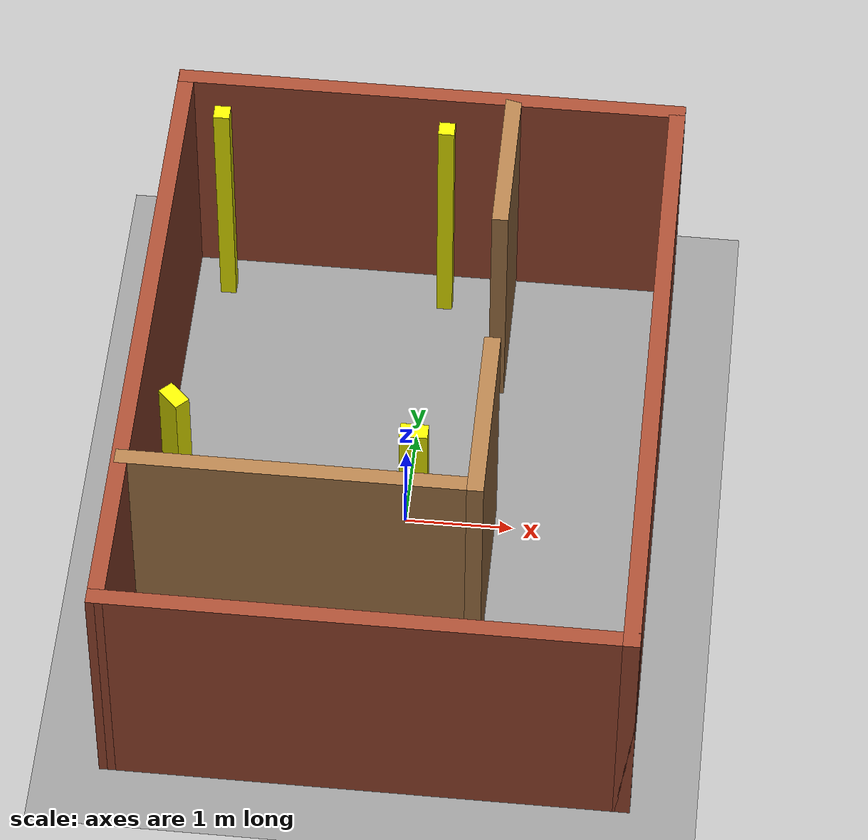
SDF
<sdf version="1.6">
 <world name="default">
  <light name="sun" type="directional">
   <pose>0 0 10 0 -0 0</pose>
   <diffuse>0.8 0.8 0.8 1</diffuse>
   <specular>0.2 0.2 0.2 1</specular>
   <attenuation>
    <range>1000</range>
    <constant>0.9</constant>
    <linear>0.01</linear>
    <quadratic>0.001</quadratic>
   </attenuation>
   <direction>0.5 0.1 -0.9</direction>
  </light>
  <scene><ambient>0.4 0.4 0.4 1</ambient><background>0.7 0.7 0.7 1</background><shadows>1</shadows></scene>
  <physics name="default_physics" default="0" type="ode">
   <max_step_size>0.01</max_step_size>
   <real_time_factor>1</real_time_factor>
   <real_time_update_rate>100</real_time_update_rate>
  </physics>
  <model name="ground_plane_0">
   <static>1</static>
   <link name="link">
    <collision name="collision">
     <geometry><plane><normal>0 0 1</normal><size>100 100</size></plane></geometry>
     <surface><friction><ode><mu>100</mu><mu2>50</mu2></ode></friction></surface>
    </collision>
    <visual name="visual">
     <cast_shadows>0</cast_shadows>
     <geometry><plane><normal>0 0 1</normal><size>100 100</size></plane></geometry>
     <material>
      <script><uri>file://media/materials/scripts/gazebo.material</uri><name>Gazebo/Grey</name></script>
     </material>
    </visual>
    <velocity_decay><linear>0</linear><angular>0</angular></velocity_decay>
   </link>
   <pose>0.497681 0 0 0 -0 0</pose>
  </model>
  <gravity>0 0 -9.8</gravity>
  <magnetic_field>6e-06 2.3e-05 -4.2e-05</magnetic_field>
  <atmosphere type="adiabatic"/>
  <spherical_coordinates>
   <surface_model>EARTH_WGS84</surface_model>
   <latitude_deg>0</latitude_deg>
   <longitude_deg>0</longitude_deg>
   <elevation>0</elevation>
   <heading_deg>0</heading_deg>
  </spherical_coordinates>
  <model name="world_map">
   <pose>-0.075978 0.05119 0 0 -0 0</pose>
   <link name="Wall_14">
    <collision name="Wall_14_Collision">
     <geometry><box><size>3.25 0.15 2.5</size></box></geometry>
     <pose>0 0 1.25 0 -0 0</pose>
    </collision>
    <visual name="Wall_14_Visual">
     <pose>0 0 1.25 0 -0 0</pose>
     <geometry><box><size>3.25 0.15 2.5</size></box></geometry>
     <material>
      <script><uri>file://media/materials/scripts/gazebo.material</uri><name>Gazebo/Wood</name></script>
      <ambient>1 1 1 1</ambient>
     </material>
    </visual>
    <pose>-0.721278 -1.51317 0 0 -0 0</pose>
   </link>
   <link name="Wall_15">
    <collision name="Wall_15_Collision">
     <geometry><box><size>1.75 0.15 2.5</size></box></geometry>
     <pose>0 0 1.25 0 -0 0</pose>
    </collision>
    <visual name="Wall_15_Visual">
     <pose>0 0 1.25 0 -0 0</pose>
     <geometry><box><size>1.75 0.15 2.5</size></box></geometry>
     <material>
      <script><uri>file://media/materials/scripts/gazebo.material</uri><name>Gazebo/Wood</name></script>
      <ambient>1 1 1 1</ambient>
     </material>
    </visual>
    <pose>0.828722 -0.713174 0 0 -0 1.5708</pose>
   </link>
   <link name="Wall_17">
    <collision name="Wall_17_Collision">
     <geometry><box><size>1.5 0.15 2.5</size></box></geometry>
     <pose>0 0 1.25 0 -0 0</pose>
    </collision>
    <visual name="Wall_17_Visual">
     <pose>0 0 1.25 0 -0 0</pose>
     <geometry><box><size>1.5 0.15 2.5</size></box></geometry>
     <material>
      <script><uri>file://media/materials/scripts/gazebo.material</uri><name>Gazebo/Wood</name></script>
      <ambient>1 1 1 1</ambient>
     </material>
    </visual>
    <pose>0.773812 2.30803 0 0 0 -1.5708</pose>
   </link>
   <link name="Wall_2">
    <collision name="Wall_2_Collision">
     <geometry><box><size>4.76143 0.15 2.5</size></box></geometry>
     <pose>0 0 1.25 0 -0 0</pose>
    </collision>
    <visual name="Wall_2_Visual">
     <pose>0 0 1.25 0 -0 0</pose>
     <geometry><box><size>4.76143 0.15 2.5</size></box></geometry>
     <material>
      <script><uri>file://media/materials/scripts/gazebo.material</uri><name>Gazebo/Bricks</name></script>
      <ambient>1 1 1 1</ambient>
     </material>
    </visual>
    <pose>3.5e-05 -3.05 0 0 -0 0</pose>
   </link>
   <link name="Wall_4">
    <collision name="Wall_4_Collision">
     <geometry><box><size>6.25 0.15 2.5</size></box></geometry>
     <pose>0 0 1.25 0 -0 0</pose>
    </collision>
    <visual name="Wall_4_Visual">
     <pose>0 0 1.25 0 -0 0</pose>
     <geometry><box><size>6.25 0.15 2.5</size></box></geometry>
     <material>
      <script><uri>file://media/materials/scripts/gazebo.material</uri><name>Gazebo/Bricks</name></script>
      <ambient>1 1 1 1</ambient>
     </material>
    </visual>
    <pose>2.30003 0 0 0 -0 1.5708</pose>
   </link>
   <link name="Wall_7">
    <collision name="Wall_7_Collision">
     <geometry><box><size>4.75 0.15 2.5</size></box></geometry>
     <pose>0 0 1.25 0 -0 0</pose>
    </collision>
    <visual name="Wall_7_Visual">
     <pose>0 0 1.25 0 -0 0</pose>
     <geometry><box><size>4.75 0.15 2.5</size></box></geometry>
     <material>
      <script><uri>file://media/materials/scripts/gazebo.material</uri><name>Gazebo/Bricks</name></script>
      <ambient>1 1 1 1</ambient>
     </material>
    </visual>
    <pose>3.5e-05 3.05 0 0 -0 3.14159</pose>
   </link>
   <link name="Wall_8">
    <collision name="Wall_8_Collision">
     <geometry><box><size>6.25 0.15 2.5</size></box></geometry>
     <pose>0 0 1.25 0 -0 0</pose>
    </collision>
    <visual name="Wall_8_Visual">
     <pose>0 0 1.25 0 -0 0</pose>
     <geometry><box><size>6.25 0.15 2.5</size></box></geometry>
     <material>
      <script><uri>file://media/materials/scripts/gazebo.material</uri><name>Gazebo/Bricks</name></script>
      <ambient>1 1 1 1</ambient>
     </material>
    </visual>
    <pose>-2.30282 0 0 0 0 -1.57173</pose>
   </link>
   <static>1</static>
  </model>
  <model name="my_world2_yellow">
   <pose>-0.925888 0.877691 0 0 -0 0</pose>
   <link name="Wall_10">
    <collision name="Wall_10_Collision">
     <geometry><box><size>0.25 0.15 2.5</size></box></geometry>
     <pose>0 0 1.25 0 -0 0</pose>
    </collision>
    <visual name="Wall_10_Visual">
     <pose>0 0 1.25 0 -0 0</pose>
     <geometry><box><size>0.25 0.15 2.5</size></box></geometry>
     <material>
      <script><uri>file://media/materials/scripts/gazebo.material</uri><name>Gazebo/Grey</name></script>
      <ambient>1 1 0 1</ambient>
     </material>
    </visual>
    <pose>-1.06947 -1.61234 0 0 -0 2.35619</pose>
   </link>
   <link name="Wall_2">
    <collision name="Wall_2_Collision">
     <geometry><box><size>0.15 0.15 2.5</size></box></geometry>
     <pose>0 0 1.25 0 -0 0</pose>
    </collision>
    <visual name="Wall_2_Visual">
     <pose>0 0 1.25 0 -0 0</pose>
     <geometry><box><size>0.15 0.15 2.5</size></box></geometry>
     <material>
      <script><uri>file://media/materials/scripts/gazebo.material</uri><name>Gazebo/Grey</name></script>
      <ambient>1 1 0 1</ambient>
     </material>
    </visual>
    <pose>-1.06411 1.8 0 0 -0 0</pose>
   </link>
   <link name="Wall_6">
    <collision name="Wall_6_Collision">
     <geometry><box><size>0.15 0.15 2.5</size></box></geometry>
     <pose>0 0 1.25 0 -0 0</pose>
    </collision>
    <visual name="Wall_6_Visual">
     <pose>0 0 1.25 0 -0 0</pose>
     <geometry><box><size>0.15 0.15 2.5</size></box></geometry>
     <material>
      <script><uri>file://media/materials/scripts/gazebo.material</uri><name>Gazebo/Grey</name></script>
      <ambient>1 1 0 1</ambient>
     </material>
    </visual>
    <pose>1.03589 1.8 0 0 -0 0</pose>
   </link>
   <link name="Wall_8">
    <collision name="Wall_8_Collision">
     <geometry><box><size>0.25 0.15 2.5</size></box></geometry>
     <pose>0 0 1.25 0 -0 0</pose>
    </collision>
    <visual name="Wall_8_Visual">
     <pose>0 0 1.25 0 -0 0</pose>
     <geometry><box><size>0.25 0.15 2.5</size></box></geometry>
     <material>
      <script><uri>file://media/materials/scripts/gazebo.material</uri><name>Gazebo/Grey</name></script>
      <ambient>1 1 0 1</ambient>
     </material>
    </visual>
    <pose>1.08589 -1.8 0 0 -0 0</pose>
   </link>
   <static>1</static>
  </model>
 </world>
</sdf>
